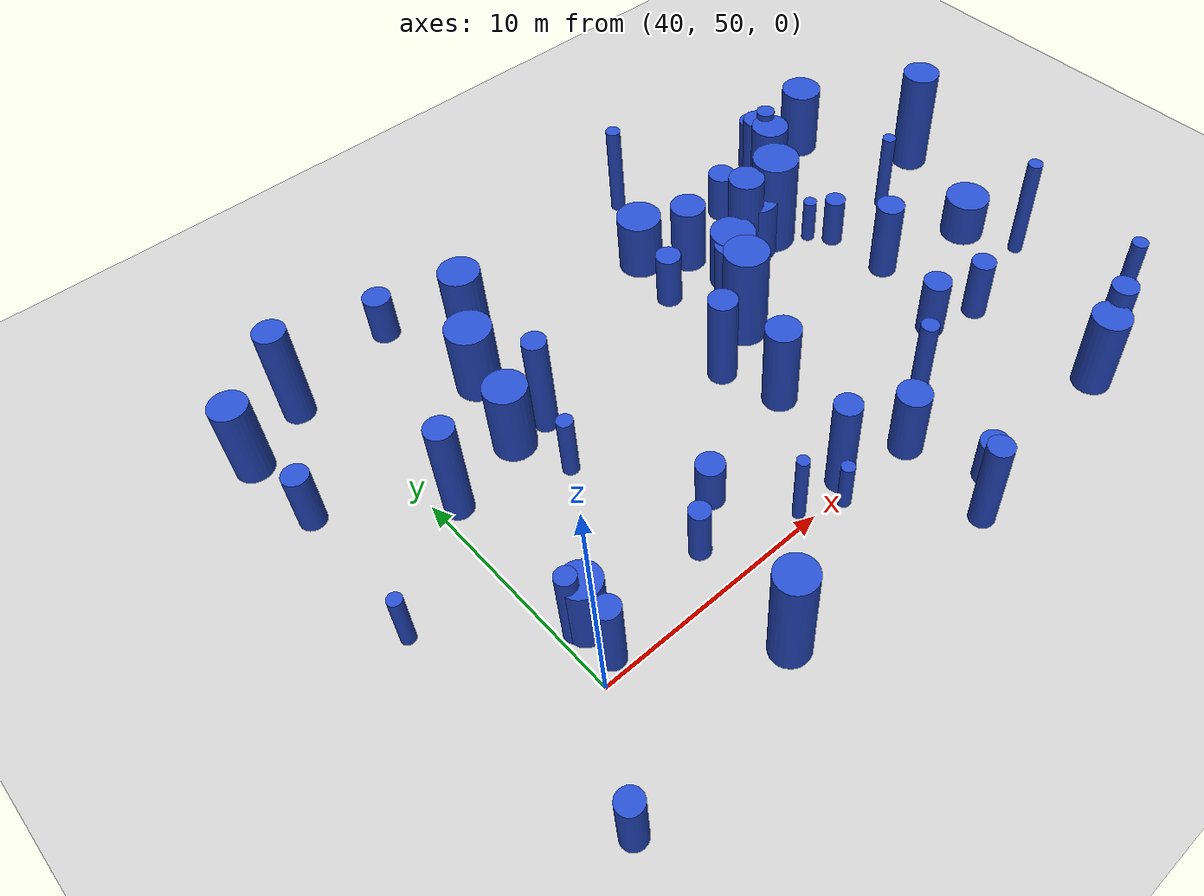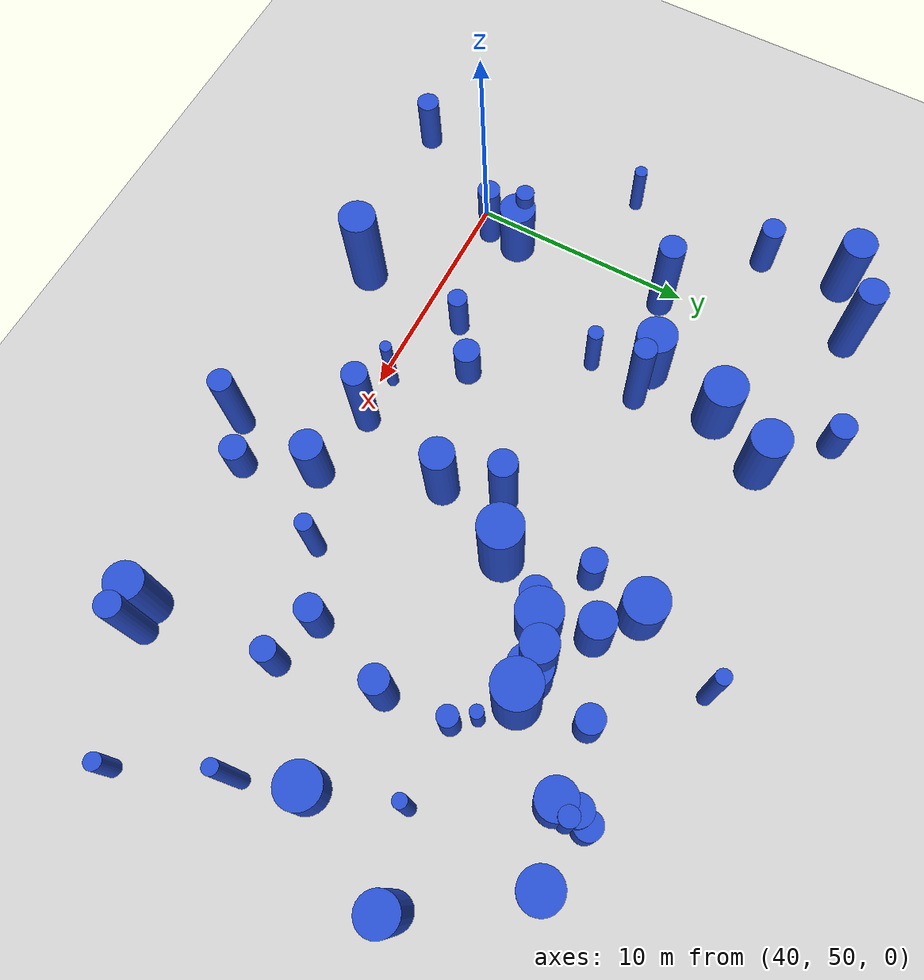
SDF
<sdf version="1.7">
 <world name="default">
  <model name="ground_plane">
   <static>1</static>
   <link name="link">
    <collision name="collision">
     <geometry><plane><normal>0 0 1</normal><size>100 100</size></plane></geometry>
     <surface>
      <contact><collide_bitmask>65535</collide_bitmask></contact>
      <friction><ode><mu>100</mu><mu2>50</mu2></ode></friction>
     </surface>
    </collision>
    <visual name="visual">
     <cast_shadows>0</cast_shadows>
     <geometry><plane><normal>0 0 1</normal><size>100 100</size></plane></geometry>
     <material>
      <script><uri>file://media/materials/scripts/gazebo.material</uri><name>Gazebo/Grey</name></script>
     </material>
    </visual>
   </link>
  </model>
  <model name="0">
   <static>0</static>
   <link name="link">
    <inertial>
     <mass>2</mass>
     <inertia><ixx>3.55486</ixx><ixy>0</ixy><ixz>0</ixz><iyy>3.55486</iyy><iyz>0</iyz><izz>0.297884</izz></inertia>
    </inertial>
    <collision name="collision">
     <geometry><cylinder><length>4.52056</length><radius>0.545787</radius></cylinder></geometry>
     <surface><contact><collide_without_contact>1</collide_without_contact></contact></surface>
    </collision>
    <visual name="visual">
     <geometry><cylinder><length>4.52056</length><radius>0.545787</radius></cylinder></geometry>
     <material>
      <script><uri>file://media/materials/scripts/gazebo.material</uri><name>Gazebo/Blue</name></script>
     </material>
    </visual>
    <gravity>0</gravity>
   </link>
   <pose>51.8596 50.4789 2.26028 0 -0 0</pose>
  </model>
  <model name="3">
   <static>0</static>
   <link name="link">
    <inertial>
     <mass>2</mass>
     <inertia><ixx>1.79748</ixx><ixy>0</ixy><ixz>0</ixz><iyy>1.79748</iyy><iyz>0</iyz><izz>0.403289</izz></inertia>
    </inertial>
    <collision name="collision">
     <geometry><cylinder><length>3.09435</length><radius>0.635051</radius></cylinder></geometry>
     <surface><contact><collide_without_contact>1</collide_without_contact></contact></surface>
    </collision>
    <visual name="visual">
     <geometry><cylinder><length>3.09435</length><radius>0.635051</radius></cylinder></geometry>
     <material>
      <script><uri>file://media/materials/scripts/gazebo.material</uri><name>Gazebo/Blue</name></script>
     </material>
    </visual>
    <gravity>0</gravity>
   </link>
   <pose>62.4576 65.7007 1.54718 0 -0 0</pose>
  </model>
  <model name="11">
   <static>0</static>
   <link name="link">
    <inertial>
     <mass>2</mass>
     <inertia><ixx>1.48597</ixx><ixy>0</ixy><ixz>0</ixz><iyy>1.48597</iyy><iyz>0</iyz><izz>0.264549</izz></inertia>
    </inertial>
    <collision name="collision">
     <geometry><cylinder><length>2.84994</length><radius>0.514344</radius></cylinder></geometry>
     <surface><contact><collide_without_contact>1</collide_without_contact></contact></surface>
    </collision>
    <visual name="visual">
     <geometry><cylinder><length>2.84994</length><radius>0.514344</radius></cylinder></geometry>
     <material>
      <script><uri>file://media/materials/scripts/gazebo.material</uri><name>Gazebo/Blue</name></script>
     </material>
    </visual>
    <gravity>0</gravity>
   </link>
   <pose>62.7124 52.6952 1.42497 0 -0 0</pose>
  </model>
  <model name="15">
   <static>0</static>
   <link name="link">
    <inertial>
     <mass>2</mass>
     <inertia><ixx>1.70661</ixx><ixy>0</ixy><ixz>0</ixz><iyy>1.70661</iyy><iyz>0</iyz><izz>0.956436</izz></inertia>
    </inertial>
    <collision name="collision">
     <geometry><cylinder><length>2.71484</length><radius>0.977976</radius></cylinder></geometry>
     <surface><contact><collide_without_contact>1</collide_without_contact></contact></surface>
    </collision>
    <visual name="visual">
     <geometry><cylinder><length>2.71484</length><radius>0.977976</radius></cylinder></geometry>
     <material>
      <script><uri>file://media/materials/scripts/gazebo.material</uri><name>Gazebo/Blue</name></script>
     </material>
    </visual>
    <gravity>0</gravity>
   </link>
   <pose>56.5828 61.1987 1.35742 0 -0 0</pose>
  </model>
  <model name="18">
   <static>0</static>
   <link name="link">
    <inertial>
     <mass>2</mass>
     <inertia><ixx>2.27941</ixx><ixy>0</ixy><ixz>0</ixz><iyy>2.27941</iyy><iyz>0</iyz><izz>0.900366</izz></inertia>
    </inertial>
    <collision name="collision">
     <geometry><cylinder><length>3.31291</length><radius>0.948876</radius></cylinder></geometry>
     <surface><contact><collide_without_contact>1</collide_without_contact></contact></surface>
    </collision>
    <visual name="visual">
     <geometry><cylinder><length>3.31291</length><radius>0.948876</radius></cylinder></geometry>
     <material>
      <script><uri>file://media/materials/scripts/gazebo.material</uri><name>Gazebo/Blue</name></script>
     </material>
    </visual>
    <gravity>0</gravity>
   </link>
   <pose>44.8857 63.7729 1.65646 0 -0 0</pose>
  </model>
  <model name="25">
   <static>0</static>
   <link name="link">
    <inertial>
     <mass>2</mass>
     <inertia><ixx>2.06566</ixx><ixy>0</ixy><ixz>0</ixz><iyy>2.06566</iyy><iyz>0</iyz><izz>0.169636</izz></inertia>
    </inertial>
    <collision name="collision">
     <geometry><cylinder><length>3.44747</length><radius>0.411869</radius></cylinder></geometry>
     <surface><contact><collide_without_contact>1</collide_without_contact></contact></surface>
    </collision>
    <visual name="visual">
     <geometry><cylinder><length>3.44747</length><radius>0.411869</radius></cylinder></geometry>
     <material>
      <script><uri>file://media/materials/scripts/gazebo.material</uri><name>Gazebo/Blue</name></script>
     </material>
    </visual>
    <gravity>0</gravity>
   </link>
   <pose>62.8115 65.5227 1.72374 0 -0 0</pose>
  </model>
  <model name="36">
   <static>0</static>
   <link name="link">
    <inertial>
     <mass>2</mass>
     <inertia><ixx>1.15813</ixx><ixy>0</ixy><ixz>0</ixz><iyy>1.15813</iyy><iyz>0</iyz><izz>0.18494</izz></inertia>
    </inertial>
    <collision name="collision">
     <geometry><cylinder><length>2.52863</length><radius>0.430047</radius></cylinder></geometry>
     <surface><contact><collide_without_contact>1</collide_without_contact></contact></surface>
    </collision>
    <visual name="visual">
     <geometry><cylinder><length>2.52863</length><radius>0.430047</radius></cylinder></geometry>
     <material>
      <script><uri>file://media/materials/scripts/gazebo.material</uri><name>Gazebo/Blue</name></script>
     </material>
    </visual>
    <gravity>0</gravity>
   </link>
   <pose>45.9389 51.8018 1.26432 0 -0 0</pose>
  </model>
  <model name="44">
   <static>0</static>
   <link name="link">
    <inertial>
     <mass>2</mass>
     <inertia><ixx>1.18069</ixx><ixy>0</ixy><ixz>0</ixz><iyy>1.18069</iyy><iyz>0</iyz><izz>0.295683</izz></inertia>
    </inertial>
    <collision name="collision">
     <geometry><cylinder><length>2.48939</length><radius>0.543768</radius></cylinder></geometry>
     <surface><contact><collide_without_contact>1</collide_without_contact></contact></surface>
    </collision>
    <visual name="visual">
     <geometry><cylinder><length>2.48939</length><radius>0.543768</radius></cylinder></geometry>
     <material>
      <script><uri>file://media/materials/scripts/gazebo.material</uri><name>Gazebo/Blue</name></script>
     </material>
    </visual>
    <gravity>0</gravity>
   </link>
   <pose>53.7726 62.1724 1.2447 0 -0 0</pose>
  </model>
  <model name="49">
   <static>0</static>
   <link name="link">
    <inertial>
     <mass>2</mass>
     <inertia><ixx>3.82017</ixx><ixy>0</ixy><ixz>0</ixz><iyy>3.82017</iyy><iyz>0</iyz><izz>0.891197</izz></inertia>
    </inertial>
    <collision name="collision">
     <geometry><cylinder><length>4.49972</length><radius>0.944032</radius></cylinder></geometry>
     <surface><contact><collide_without_contact>1</collide_without_contact></contact></surface>
    </collision>
    <visual name="visual">
     <geometry><cylinder><length>4.49972</length><radius>0.944032</radius></cylinder></geometry>
     <material>
      <script><uri>file://media/materials/scripts/gazebo.material</uri><name>Gazebo/Blue</name></script>
     </material>
    </visual>
    <gravity>0</gravity>
   </link>
   <pose>54.7934 58.5944 2.24986 0 -0 0</pose>
  </model>
  <model name="50">
   <static>0</static>
   <link name="link">
    <inertial>
     <mass>2</mass>
     <inertia><ixx>4.39079</ixx><ixy>0</ixy><ixz>0</ixz><iyy>4.39079</iyy><iyz>0</iyz><izz>0.652635</izz></inertia>
    </inertial>
    <collision name="collision">
     <geometry><cylinder><length>4.9383</length><radius>0.807858</radius></cylinder></geometry>
     <surface><contact><collide_without_contact>1</collide_without_contact></contact></surface>
    </collision>
    <visual name="visual">
     <geometry><cylinder><length>4.9383</length><radius>0.807858</radius></cylinder></geometry>
     <material>
      <script><uri>file://media/materials/scripts/gazebo.material</uri><name>Gazebo/Blue</name></script>
     </material>
    </visual>
    <gravity>0</gravity>
   </link>
   <pose>68.5236 61.303 2.46915 0 -0 0</pose>
  </model>
  <model name="71">
   <static>0</static>
   <link name="link">
    <inertial>
     <mass>2</mass>
     <inertia><ixx>1.26288</ixx><ixy>0</ixy><ixz>0</ixz><iyy>1.26288</iyy><iyz>0</iyz><izz>0.333359</izz></inertia>
    </inertial>
    <collision name="collision">
     <geometry><cylinder><length>2.5646</length><radius>0.577373</radius></cylinder></geometry>
     <surface><contact><collide_without_contact>1</collide_without_contact></contact></surface>
    </collision>
    <visual name="visual">
     <geometry><cylinder><length>2.5646</length><radius>0.577373</radius></cylinder></geometry>
     <material>
      <script><uri>file://media/materials/scripts/gazebo.material</uri><name>Gazebo/Blue</name></script>
     </material>
    </visual>
    <gravity>0</gravity>
   </link>
   <pose>62.7037 66.2773 1.2823 0 -0 0</pose>
  </model>
  <model name="73">
   <static>0</static>
   <link name="link">
    <inertial>
     <mass>2</mass>
     <inertia><ixx>2.00036</ixx><ixy>0</ixy><ixz>0</ixz><iyy>2.00036</iyy><iyz>0</iyz><izz>0.690071</izz></inertia>
    </inertial>
    <collision name="collision">
     <geometry><cylinder><length>3.1515</length><radius>0.830705</radius></cylinder></geometry>
     <surface><contact><collide_without_contact>1</collide_without_contact></contact></surface>
    </collision>
    <visual name="visual">
     <geometry><cylinder><length>3.1515</length><radius>0.830705</radius></cylinder></geometry>
     <material>
      <script><uri>file://media/materials/scripts/gazebo.material</uri><name>Gazebo/Blue</name></script>
     </material>
    </visual>
    <gravity>0</gravity>
   </link>
   <pose>62.4646 64.8746 1.57575 0 -0 0</pose>
  </model>
  <model name="75">
   <static>0</static>
   <link name="link">
    <inertial>
     <mass>2</mass>
     <inertia><ixx>1.82506</ixx><ixy>0</ixy><ixz>0</ixz><iyy>1.82506</iyy><iyz>0</iyz><izz>0.862483</izz></inertia>
    </inertial>
    <collision name="collision">
     <geometry><cylinder><length>2.89187</length><radius>0.928699</radius></cylinder></geometry>
     <surface><contact><collide_without_contact>1</collide_without_contact></contact></surface>
    </collision>
    <visual name="visual">
     <geometry><cylinder><length>2.89187</length><radius>0.928699</radius></cylinder></geometry>
     <material>
      <script><uri>file://media/materials/scripts/gazebo.material</uri><name>Gazebo/Blue</name></script>
     </material>
    </visual>
    <gravity>0</gravity>
   </link>
   <pose>58.6581 61.8679 1.44593 0 -0 0</pose>
  </model>
  <model name="91">
   <static>0</static>
   <link name="link">
    <inertial>
     <mass>2</mass>
     <inertia><ixx>1.36713</ixx><ixy>0</ixy><ixz>0</ixz><iyy>1.36713</iyy><iyz>0</iyz><izz>0.24454</izz></inertia>
    </inertial>
    <collision name="collision">
     <geometry><cylinder><length>2.73298</length><radius>0.49451</radius></cylinder></geometry>
     <surface><contact><collide_without_contact>1</collide_without_contact></contact></surface>
    </collision>
    <visual name="visual">
     <geometry><cylinder><length>2.73298</length><radius>0.49451</radius></cylinder></geometry>
     <material>
      <script><uri>file://media/materials/scripts/gazebo.material</uri><name>Gazebo/Blue</name></script>
     </material>
    </visual>
    <gravity>0</gravity>
   </link>
   <pose>37.4789 45.6424 1.36649 0 -0 0</pose>
  </model>
  <model name="93">
   <static>0</static>
   <link name="link">
    <inertial>
     <mass>2</mass>
     <inertia>
      <ixx>1.77363</ixx>
      <ixy>0</ixy>
      <ixz>0</ixz>
      <iyy>1.77363</iyy>
      <iyz>0</iyz>
      <izz>0.0645447</izz>
     </inertia>
    </inertial>
    <collision name="collision">
     <geometry><cylinder><length>3.23236</length><radius>0.254056</radius></cylinder></geometry>
     <surface><contact><collide_without_contact>1</collide_without_contact></contact></surface>
    </collision>
    <visual name="visual">
     <geometry><cylinder><length>3.23236</length><radius>0.254056</radius></cylinder></geometry>
     <material>
      <script><uri>file://media/materials/scripts/gazebo.material</uri><name>Gazebo/Blue</name></script>
     </material>
    </visual>
    <gravity>0</gravity>
   </link>
   <pose>49.6948 50.4954 1.61618 0 -0 0</pose>
  </model>
  <model name="94">
   <static>0</static>
   <link name="link">
    <inertial>
     <mass>2</mass>
     <inertia><ixx>1.43984</ixx><ixy>0</ixy><ixz>0</ixz><iyy>1.43984</iyy><iyz>0</iyz><izz>0.112897</izz></inertia>
    </inertial>
    <collision name="collision">
     <geometry><cylinder><length>2.88103</length><radius>0.336001</radius></cylinder></geometry>
     <surface><contact><collide_without_contact>1</collide_without_contact></contact></surface>
    </collision>
    <visual name="visual">
     <geometry><cylinder><length>2.88103</length><radius>0.336001</radius></cylinder></geometry>
     <material>
      <script><uri>file://media/materials/scripts/gazebo.material</uri><name>Gazebo/Blue</name></script>
     </material>
    </visual>
    <gravity>0</gravity>
   </link>
   <pose>44.8905 57.8981 1.44052 0 -0 0</pose>
  </model>
  <model name="95">
   <static>0</static>
   <link name="link">
    <inertial>
     <mass>2</mass>
     <inertia>
      <ixx>0.940801</ixx>
      <ixy>0</ixy>
      <ixz>0</ixz>
      <iyy>0.940801</iyy>
      <iyz>0</iyz>
      <izz>0.344368</izz>
     </inertia>
    </inertial>
    <collision name="collision">
     <geometry><cylinder><length>2.14749</length><radius>0.586829</radius></cylinder></geometry>
     <surface><contact><collide_without_contact>1</collide_without_contact></contact></surface>
    </collision>
    <visual name="visual">
     <geometry><cylinder><length>2.14749</length><radius>0.586829</radius></cylinder></geometry>
     <material>
      <script><uri>file://media/materials/scripts/gazebo.material</uri><name>Gazebo/Blue</name></script>
     </material>
    </visual>
    <gravity>0</gravity>
   </link>
   <pose>43.7118 68.782 1.07374 0 -0 0</pose>
  </model>
  <model name="118">
   <static>0</static>
   <link name="link">
    <inertial>
     <mass>2</mass>
     <inertia><ixx>1.89909</ixx><ixy>0</ixy><ixz>0</ixz><iyy>1.89909</iyy><iyz>0</iyz><izz>0.622758</izz></inertia>
    </inertial>
    <collision name="collision">
     <geometry><cylinder><length>3.08646</length><radius>0.78915</radius></cylinder></geometry>
     <surface><contact><collide_without_contact>1</collide_without_contact></contact></surface>
    </collision>
    <visual name="visual">
     <geometry><cylinder><length>3.08646</length><radius>0.78915</radius></cylinder></geometry>
     <material>
      <script><uri>file://media/materials/scripts/gazebo.material</uri><name>Gazebo/Blue</name></script>
     </material>
    </visual>
    <gravity>0</gravity>
   </link>
   <pose>41.0031 52.1707 1.54323 0 -0 0</pose>
  </model>
  <model name="133">
   <static>0</static>
   <link name="link">
    <inertial>
     <mass>2</mass>
     <inertia><ixx>2.01033</ixx><ixy>0</ixy><ixz>0</ixz><iyy>2.01033</iyy><iyz>0</iyz><izz>0.140787</izz></inertia>
    </inertial>
    <collision name="collision">
     <geometry><cylinder><length>3.41169</length><radius>0.375216</radius></cylinder></geometry>
     <surface><contact><collide_without_contact>1</collide_without_contact></contact></surface>
    </collision>
    <visual name="visual">
     <geometry><cylinder><length>3.41169</length><radius>0.375216</radius></cylinder></geometry>
     <material>
      <script><uri>file://media/materials/scripts/gazebo.material</uri><name>Gazebo/Blue</name></script>
     </material>
    </visual>
    <gravity>0</gravity>
   </link>
   <pose>57.8577 51.5941 1.70585 0 -0 0</pose>
  </model>
  <model name="145">
   <static>0</static>
   <link name="link">
    <inertial>
     <mass>2</mass>
     <inertia><ixx>2.22651</ixx><ixy>0</ixy><ixz>0</ixz><iyy>2.22651</iyy><iyz>0</iyz><izz>0.788437</izz></inertia>
    </inertial>
    <collision name="collision">
     <geometry><cylinder><length>3.31569</length><radius>0.88794</radius></cylinder></geometry>
     <surface><contact><collide_without_contact>1</collide_without_contact></contact></surface>
    </collision>
    <visual name="visual">
     <geometry><cylinder><length>3.31569</length><radius>0.88794</radius></cylinder></geometry>
     <material>
      <script><uri>file://media/materials/scripts/gazebo.material</uri><name>Gazebo/Blue</name></script>
     </material>
    </visual>
    <gravity>0</gravity>
   </link>
   <pose>65.402 65.7396 1.65784 0 -0 0</pose>
  </model>
  <model name="170">
   <static>0</static>
   <link name="link">
    <inertial>
     <mass>2</mass>
     <inertia>
      <ixx>0.902578</ixx>
      <ixy>0</ixy>
      <ixz>0</ixz>
      <iyy>0.902578</iyy>
      <iyz>0</iyz>
      <izz>0.329341</izz>
     </inertia>
    </inertial>
    <collision name="collision">
     <geometry><cylinder><length>2.10415</length><radius>0.573883</radius></cylinder></geometry>
     <surface><contact><collide_without_contact>1</collide_without_contact></contact></surface>
    </collision>
    <visual name="visual">
     <geometry><cylinder><length>2.10415</length><radius>0.573883</radius></cylinder></geometry>
     <material>
      <script><uri>file://media/materials/scripts/gazebo.material</uri><name>Gazebo/Blue</name></script>
     </material>
    </visual>
    <gravity>0</gravity>
   </link>
   <pose>47.8044 53.2513 1.05207 0 -0 0</pose>
  </model>
  <model name="178">
   <static>0</static>
   <link name="link">
    <inertial>
     <mass>2</mass>
     <inertia>
      <ixx>2.40858</ixx>
      <ixy>0</ixy>
      <ixz>0</ixz>
      <iyy>2.40858</iyy>
      <iyz>0</iyz>
      <izz>0.0861653</izz>
     </inertia>
    </inertial>
    <collision name="collision">
     <geometry><cylinder><length>3.76736</length><radius>0.293539</radius></cylinder></geometry>
     <surface><contact><collide_without_contact>1</collide_without_contact></contact></surface>
    </collision>
    <visual name="visual">
     <geometry><cylinder><length>3.76736</length><radius>0.293539</radius></cylinder></geometry>
     <material>
      <script><uri>file://media/materials/scripts/gazebo.material</uri><name>Gazebo/Blue</name></script>
     </material>
    </visual>
    <gravity>0</gravity>
   </link>
   <pose>65.0951 60.0598 1.88368 0 -0 0</pose>
  </model>
  <model name="191">
   <static>0</static>
   <link name="link">
    <inertial>
     <mass>2</mass>
     <inertia><ixx>2.5267</ixx><ixy>0</ixy><ixz>0</ixz><iyy>2.5267</iyy><iyz>0</iyz><izz>0.749953</izz></inertia>
    </inertial>
    <collision name="collision">
     <geometry><cylinder><length>3.5931</length><radius>0.865998</radius></cylinder></geometry>
     <surface><contact><collide_without_contact>1</collide_without_contact></contact></surface>
    </collision>
    <visual name="visual">
     <geometry><cylinder><length>3.5931</length><radius>0.865998</radius></cylinder></geometry>
     <material>
      <script><uri>file://media/materials/scripts/gazebo.material</uri><name>Gazebo/Blue</name></script>
     </material>
    </visual>
    <gravity>0</gravity>
   </link>
   <pose>46.3072 66.3061 1.79655 0 -0 0</pose>
  </model>
  <model name="199">
   <static>0</static>
   <link name="link">
    <inertial>
     <mass>2</mass>
     <inertia><ixx>2.64796</ixx><ixy>0</ixy><ixz>0</ixz><iyy>2.64796</iyy><iyz>0</iyz><izz>0.64376</izz></inertia>
    </inertial>
    <collision name="collision">
     <geometry><cylinder><length>3.73584</length><radius>0.802346</radius></cylinder></geometry>
     <surface><contact><collide_without_contact>1</collide_without_contact></contact></surface>
    </collision>
    <visual name="visual">
     <geometry><cylinder><length>3.73584</length><radius>0.802346</radius></cylinder></geometry>
     <material>
      <script><uri>file://media/materials/scripts/gazebo.material</uri><name>Gazebo/Blue</name></script>
     </material>
    </visual>
    <gravity>0</gravity>
   </link>
   <pose>63.0315 46.9354 1.86792 0 -0 0</pose>
  </model>
  <model name="203">
   <static>0</static>
   <link name="link">
    <inertial>
     <mass>2</mass>
     <inertia><ixx>3.10876</ixx><ixy>0</ixy><ixz>0</ixz><iyy>3.10876</iyy><iyz>0</iyz><izz>0.104013</izz></inertia>
    </inertial>
    <collision name="collision">
     <geometry><cylinder><length>4.28259</length><radius>0.322511</radius></cylinder></geometry>
     <surface><contact><collide_without_contact>1</collide_without_contact></contact></surface>
    </collision>
    <visual name="visual">
     <geometry><cylinder><length>4.28259</length><radius>0.322511</radius></cylinder></geometry>
     <material>
      <script><uri>file://media/materials/scripts/gazebo.material</uri><name>Gazebo/Blue</name></script>
     </material>
    </visual>
    <gravity>0</gravity>
   </link>
   <pose>56.0746 68.2998 2.14129 0 -0 0</pose>
  </model>
  <model name="213">
   <static>0</static>
   <link name="link">
    <inertial>
     <mass>2</mass>
     <inertia><ixx>3.45654</ixx><ixy>0</ixy><ixz>0</ixz><iyy>3.45654</iyy><iyz>0</iyz><izz>0.582944</izz></inertia>
    </inertial>
    <collision name="collision">
     <geometry><cylinder><length>4.3578</length><radius>0.763508</radius></cylinder></geometry>
     <surface><contact><collide_without_contact>1</collide_without_contact></contact></surface>
    </collision>
    <visual name="visual">
     <geometry><cylinder><length>4.3578</length><radius>0.763508</radius></cylinder></geometry>
     <material>
      <script><uri>file://media/materials/scripts/gazebo.material</uri><name>Gazebo/Blue</name></script>
     </material>
    </visual>
    <gravity>0</gravity>
   </link>
   <pose>58.0478 61.9204 2.1789 0 -0 0</pose>
  </model>
  <model name="219">
   <static>0</static>
   <link name="link">
    <inertial>
     <mass>2</mass>
     <inertia><ixx>3.40785</ixx><ixy>0</ixy><ixz>0</ixz><iyy>3.40785</iyy><iyz>0</iyz><izz>0.292131</izz></inertia>
    </inertial>
    <collision name="collision">
     <geometry><cylinder><length>4.42388</length><radius>0.540492</radius></cylinder></geometry>
     <surface><contact><collide_without_contact>1</collide_without_contact></contact></surface>
    </collision>
    <visual name="visual">
     <geometry><cylinder><length>4.42388</length><radius>0.540492</radius></cylinder></geometry>
     <material>
      <script><uri>file://media/materials/scripts/gazebo.material</uri><name>Gazebo/Blue</name></script>
     </material>
    </visual>
    <gravity>0</gravity>
   </link>
   <pose>64.0763 47.2549 2.21194 0 -0 0</pose>
  </model>
  <model name="230">
   <static>0</static>
   <link name="link">
    <inertial>
     <mass>2</mass>
     <inertia><ixx>2.95672</ixx><ixy>0</ixy><ixz>0</ixz><iyy>2.95672</iyy><iyz>0</iyz><izz>0.521312</izz></inertia>
    </inertial>
    <collision name="collision">
     <geometry><cylinder><length>4.02199</length><radius>0.722019</radius></cylinder></geometry>
     <surface><contact><collide_without_contact>1</collide_without_contact></contact></surface>
    </collision>
    <visual name="visual">
     <geometry><cylinder><length>4.02199</length><radius>0.722019</radius></cylinder></geometry>
     <material>
      <script><uri>file://media/materials/scripts/gazebo.material</uri><name>Gazebo/Blue</name></script>
     </material>
    </visual>
    <gravity>0</gravity>
   </link>
   <pose>53.1697 54.9299 2.01099 0 -0 0</pose>
  </model>
  <model name="238">
   <static>0</static>
   <link name="link">
    <inertial>
     <mass>2</mass>
     <inertia><ixx>3.85377</ixx><ixy>0</ixy><ixz>0</ixz><iyy>3.85377</iyy><iyz>0</iyz><izz>0.329647</izz></inertia>
    </inertial>
    <collision name="collision">
     <geometry><cylinder><length>4.70465</length><radius>0.574149</radius></cylinder></geometry>
     <surface><contact><collide_without_contact>1</collide_without_contact></contact></surface>
    </collision>
    <visual name="visual">
     <geometry><cylinder><length>4.70465</length><radius>0.574149</radius></cylinder></geometry>
     <material>
      <script><uri>file://media/materials/scripts/gazebo.material</uri><name>Gazebo/Blue</name></script>
     </material>
    </visual>
    <gravity>0</gravity>
   </link>
   <pose>40.7365 59.3109 2.35232 0 -0 0</pose>
  </model>
  <model name="247">
   <static>0</static>
   <link name="link">
    <inertial>
     <mass>2</mass>
     <inertia><ixx>2.30352</ixx><ixy>0</ixy><ixz>0</ixz><iyy>2.30352</iyy><iyz>0</iyz><izz>0.759355</izz></inertia>
    </inertial>
    <collision name="collision">
     <geometry><cylinder><length>3.3975</length><radius>0.87141</radius></cylinder></geometry>
     <surface><contact><collide_without_contact>1</collide_without_contact></contact></surface>
    </collision>
    <visual name="visual">
     <geometry><cylinder><length>3.3975</length><radius>0.87141</radius></cylinder></geometry>
     <material>
      <script><uri>file://media/materials/scripts/gazebo.material</uri><name>Gazebo/Blue</name></script>
     </material>
    </visual>
    <gravity>0</gravity>
   </link>
   <pose>44.0715 60.3091 1.69875 0 -0 0</pose>
  </model>
  <model name="262">
   <static>0</static>
   <link name="link">
    <inertial>
     <mass>2</mass>
     <inertia>
      <ixx>0.750308</ixx>
      <ixy>0</ixy>
      <ixz>0</ixz>
      <iyy>0.750308</iyy>
      <iyz>0</iyz>
      <izz>0.0839869</izz>
     </inertia>
    </inertial>
    <collision name="collision">
     <geometry><cylinder><length>2.06153</length><radius>0.289805</radius></cylinder></geometry>
     <surface><contact><collide_without_contact>1</collide_without_contact></contact></surface>
    </collision>
    <visual name="visual">
     <geometry><cylinder><length>2.06153</length><radius>0.289805</radius></cylinder></geometry>
     <material>
      <script><uri>file://media/materials/scripts/gazebo.material</uri><name>Gazebo/Blue</name></script>
     </material>
    </visual>
    <gravity>0</gravity>
   </link>
   <pose>60.9569 60.8095 1.03076 0 -0 0</pose>
  </model>
  <model name="266">
   <static>0</static>
   <link name="link">
    <inertial>
     <mass>2</mass>
     <inertia><ixx>2.35</ixx><ixy>0</ixy><ixz>0</ixz><iyy>2.35</iyy><iyz>0</iyz><izz>0.161342</izz></inertia>
    </inertial>
    <collision name="collision">
     <geometry><cylinder><length>3.68998</length><radius>0.401674</radius></cylinder></geometry>
     <surface><contact><collide_without_contact>1</collide_without_contact></contact></surface>
    </collision>
    <visual name="visual">
     <geometry><cylinder><length>3.68998</length><radius>0.401674</radius></cylinder></geometry>
     <material>
      <script><uri>file://media/materials/scripts/gazebo.material</uri><name>Gazebo/Blue</name></script>
     </material>
    </visual>
    <gravity>0</gravity>
   </link>
   <pose>40.5304 52.2904 1.84499 0 -0 0</pose>
  </model>
  <model name="270">
   <static>0</static>
   <link name="link">
    <inertial>
     <mass>2</mass>
     <inertia><ixx>3.86801</ixx><ixy>0</ixy><ixz>0</ixz><iyy>3.86801</iyy><iyz>0</iyz><izz>0.100642</izz></inertia>
    </inertial>
    <collision name="collision">
     <geometry><cylinder><length>4.78603</length><radius>0.317241</radius></cylinder></geometry>
     <surface><contact><collide_without_contact>1</collide_without_contact></contact></surface>
    </collision>
    <visual name="visual">
     <geometry><cylinder><length>4.78603</length><radius>0.317241</radius></cylinder></geometry>
     <material>
      <script><uri>file://media/materials/scripts/gazebo.material</uri><name>Gazebo/Blue</name></script>
     </material>
    </visual>
    <gravity>0</gravity>
   </link>
   <pose>67.1555 53.8833 2.39302 0 -0 0</pose>
  </model>
  <model name="274">
   <static>0</static>
   <link name="link">
    <inertial>
     <mass>2</mass>
     <inertia><ixx>2.51652</ixx><ixy>0</ixy><ixz>0</ixz><iyy>2.51652</iyy><iyz>0</iyz><izz>0.572204</izz></inertia>
    </inertial>
    <collision name="collision">
     <geometry><cylinder><length>3.65821</length><radius>0.756441</radius></cylinder></geometry>
     <surface><contact><collide_without_contact>1</collide_without_contact></contact></surface>
    </collision>
    <visual name="visual">
     <geometry><cylinder><length>3.65821</length><radius>0.756441</radius></cylinder></geometry>
     <material>
      <script><uri>file://media/materials/scripts/gazebo.material</uri><name>Gazebo/Blue</name></script>
     </material>
    </visual>
    <gravity>0</gravity>
   </link>
   <pose>36.1654 66.1938 1.82911 0 -0 0</pose>
  </model>
  <model name="283">
   <static>0</static>
   <link name="link">
    <inertial>
     <mass>2</mass>
     <inertia><ixx>2.38263</ixx><ixy>0</ixy><ixz>0</ixz><iyy>2.38263</iyy><iyz>0</iyz><izz>0.355141</izz></inertia>
    </inertial>
    <collision name="collision">
     <geometry><cylinder><length>3.63735</length><radius>0.595937</radius></cylinder></geometry>
     <surface><contact><collide_without_contact>1</collide_without_contact></contact></surface>
    </collision>
    <visual name="visual">
     <geometry><cylinder><length>3.63735</length><radius>0.595937</radius></cylinder></geometry>
     <material>
      <script><uri>file://media/materials/scripts/gazebo.material</uri><name>Gazebo/Blue</name></script>
     </material>
    </visual>
    <gravity>0</gravity>
   </link>
   <pose>61.8561 57.1143 1.81868 0 -0 0</pose>
  </model>
  <model name="285">
   <static>0</static>
   <link name="link">
    <inertial>
     <mass>2</mass>
     <inertia><ixx>1.3879</ixx><ixy>0</ixy><ixz>0</ixz><iyy>1.3879</iyy><iyz>0</iyz><izz>0.270528</izz></inertia>
    </inertial>
    <collision name="collision">
     <geometry><cylinder><length>2.7415</length><radius>0.520123</radius></cylinder></geometry>
     <surface><contact><collide_without_contact>1</collide_without_contact></contact></surface>
    </collision>
    <visual name="visual">
     <geometry><cylinder><length>2.7415</length><radius>0.520123</radius></cylinder></geometry>
     <material>
      <script><uri>file://media/materials/scripts/gazebo.material</uri><name>Gazebo/Blue</name></script>
     </material>
    </visual>
    <gravity>0</gravity>
   </link>
   <pose>36.5092 62.5655 1.37075 0 -0 0</pose>
  </model>
  <model name="295">
   <static>0</static>
   <link name="link">
    <inertial>
     <mass>2</mass>
     <inertia><ixx>1.40702</ixx><ixy>0</ixy><ixz>0</ixz><iyy>1.40702</iyy><iyz>0</iyz><izz>0.430739</izz></inertia>
    </inertial>
    <collision name="collision">
     <geometry><cylinder><length>2.67393</length><radius>0.656307</radius></cylinder></geometry>
     <surface><contact><collide_without_contact>1</collide_without_contact></contact></surface>
    </collision>
    <visual name="visual">
     <geometry><cylinder><length>2.67393</length><radius>0.656307</radius></cylinder></geometry>
     <material>
      <script><uri>file://media/materials/scripts/gazebo.material</uri><name>Gazebo/Blue</name></script>
     </material>
    </visual>
    <gravity>0</gravity>
   </link>
   <pose>55.9702 60.735 1.33696 0 -0 0</pose>
  </model>
  <model name="297">
   <static>0</static>
   <link name="link">
    <inertial>
     <mass>2</mass>
     <inertia><ixx>1.04304</ixx><ixy>0</ixy><ixz>0</ixz><iyy>1.04304</iyy><iyz>0</iyz><izz>0.357104</izz></inertia>
    </inertial>
    <collision name="collision">
     <geometry><cylinder><length>2.27748</length><radius>0.597582</radius></cylinder></geometry>
     <surface><contact><collide_without_contact>1</collide_without_contact></contact></surface>
    </collision>
    <visual name="visual">
     <geometry><cylinder><length>2.27748</length><radius>0.597582</radius></cylinder></geometry>
     <material>
      <script><uri>file://media/materials/scripts/gazebo.material</uri><name>Gazebo/Blue</name></script>
     </material>
    </visual>
    <gravity>0</gravity>
   </link>
   <pose>59.2653 64.7119 1.13874 0 -0 0</pose>
  </model>
  <model name="300">
   <static>0</static>
   <link name="link">
    <inertial>
     <mass>2</mass>
     <inertia><ixx>3.77175</ixx><ixy>0</ixy><ixz>0</ixz><iyy>3.77175</iyy><iyz>0</iyz><izz>0.40467</izz></inertia>
    </inertial>
    <collision name="collision">
     <geometry><cylinder><length>4.6278</length><radius>0.636137</radius></cylinder></geometry>
     <surface><contact><collide_without_contact>1</collide_without_contact></contact></surface>
    </collision>
    <visual name="visual">
     <geometry><cylinder><length>4.6278</length><radius>0.636137</radius></cylinder></geometry>
     <material>
      <script><uri>file://media/materials/scripts/gazebo.material</uri><name>Gazebo/Blue</name></script>
     </material>
    </visual>
    <gravity>0</gravity>
   </link>
   <pose>38.8384 67.4636 2.3139 0 -0 0</pose>
  </model>
  <model name="324">
   <static>0</static>
   <link name="link">
    <inertial>
     <mass>2</mass>
     <inertia>
      <ixx>0.905673</ixx>
      <ixy>0</ixy>
      <ixz>0</ixz>
      <iyy>0.905673</iyy>
      <iyz>0</iyz>
      <izz>0.127247</izz>
     </inertia>
    </inertial>
    <collision name="collision">
     <geometry><cylinder><length>2.24773</length><radius>0.356717</radius></cylinder></geometry>
     <surface><contact><collide_without_contact>1</collide_without_contact></contact></surface>
    </collision>
    <visual name="visual">
     <geometry><cylinder><length>2.24773</length><radius>0.356717</radius></cylinder></geometry>
     <material>
      <script><uri>file://media/materials/scripts/gazebo.material</uri><name>Gazebo/Blue</name></script>
     </material>
    </visual>
    <gravity>0</gravity>
   </link>
   <pose>69.0587 49.2167 1.12387 0 -0 0</pose>
  </model>
  <model name="328">
   <static>0</static>
   <link name="link">
    <inertial>
     <mass>2</mass>
     <inertia><ixx>3.12982</ixx><ixy>0</ixy><ixz>0</ixz><iyy>3.12982</iyy><iyz>0</iyz><izz>0.26232</izz></inertia>
    </inertial>
    <collision name="collision">
     <geometry><cylinder><length>4.24169</length><radius>0.512172</radius></cylinder></geometry>
     <surface><contact><collide_without_contact>1</collide_without_contact></contact></surface>
    </collision>
    <visual name="visual">
     <geometry><cylinder><length>4.24169</length><radius>0.512172</radius></cylinder></geometry>
     <material>
      <script><uri>file://media/materials/scripts/gazebo.material</uri><name>Gazebo/Blue</name></script>
     </material>
    </visual>
    <gravity>0</gravity>
   </link>
   <pose>54.4853 45.7609 2.12085 0 -0 0</pose>
  </model>
  <model name="333">
   <static>0</static>
   <link name="link">
    <inertial>
     <mass>2</mass>
     <inertia>
      <ixx>0.994056</ixx>
      <ixy>0</ixy>
      <ixz>0</ixz>
      <iyy>0.994056</iyy>
      <iyz>0</iyz>
      <izz>0.195811</izz>
     </inertia>
    </inertial>
    <collision name="collision">
     <geometry><cylinder><length>2.31882</length><radius>0.442505</radius></cylinder></geometry>
     <surface><contact><collide_without_contact>1</collide_without_contact></contact></surface>
    </collision>
    <visual name="visual">
     <geometry><cylinder><length>2.31882</length><radius>0.442505</radius></cylinder></geometry>
     <material>
      <script><uri>file://media/materials/scripts/gazebo.material</uri><name>Gazebo/Blue</name></script>
     </material>
    </visual>
    <gravity>0</gravity>
   </link>
   <pose>61.6342 59.9513 1.15941 0 -0 0</pose>
  </model>
  <model name="349">
   <static>0</static>
   <link name="link">
    <inertial>
     <mass>2</mass>
     <inertia>
      <ixx>0.820107</ixx>
      <ixy>0</ixy>
      <ixz>0</ixz>
      <iyy>0.820107</iyy>
      <iyz>0</iyz>
      <izz>0.0760271</izz>
     </inertia>
    </inertial>
    <collision name="collision">
     <geometry><cylinder><length>2.16623</length><radius>0.27573</radius></cylinder></geometry>
     <surface><contact><collide_without_contact>1</collide_without_contact></contact></surface>
    </collision>
    <visual name="visual">
     <geometry><cylinder><length>2.16623</length><radius>0.27573</radius></cylinder></geometry>
     <material>
      <script><uri>file://media/materials/scripts/gazebo.material</uri><name>Gazebo/Blue</name></script>
     </material>
    </visual>
    <gravity>0</gravity>
   </link>
   <pose>51.308 49.7193 1.08312 0 -0 0</pose>
  </model>
  <model name="356">
   <static>0</static>
   <link name="link">
    <inertial>
     <mass>2</mass>
     <inertia><ixx>3.19049</ixx><ixy>0</ixy><ixz>0</ixz><iyy>3.19049</iyy><iyz>0</iyz><izz>0.366687</izz></inertia>
    </inertial>
    <collision name="collision">
     <geometry><cylinder><length>4.24769</length><radius>0.605547</radius></cylinder></geometry>
     <surface><contact><collide_without_contact>1</collide_without_contact></contact></surface>
    </collision>
    <visual name="visual">
     <geometry><cylinder><length>4.24769</length><radius>0.605547</radius></cylinder></geometry>
     <material>
      <script><uri>file://media/materials/scripts/gazebo.material</uri><name>Gazebo/Blue</name></script>
     </material>
    </visual>
    <gravity>0</gravity>
   </link>
   <pose>52.4177 57.4528 2.12385 0 -0 0</pose>
  </model>
  <model name="379">
   <static>0</static>
   <link name="link">
    <inertial>
     <mass>2</mass>
     <inertia><ixx>1.98213</ixx><ixy>0</ixy><ixz>0</ixz><iyy>1.98213</iyy><iyz>0</iyz><izz>0.245871</izz></inertia>
    </inertial>
    <collision name="collision">
     <geometry><cylinder><length>3.33993</length><radius>0.495854</radius></cylinder></geometry>
     <surface><contact><collide_without_contact>1</collide_without_contact></contact></surface>
    </collision>
    <visual name="visual">
     <geometry><cylinder><length>3.33993</length><radius>0.495854</radius></cylinder></geometry>
     <material>
      <script><uri>file://media/materials/scripts/gazebo.material</uri><name>Gazebo/Blue</name></script>
     </material>
    </visual>
    <gravity>0</gravity>
   </link>
   <pose>40.8966 50.6812 1.66997 0 -0 0</pose>
  </model>
  <model name="384">
   <static>0</static>
   <link name="link">
    <inertial>
     <mass>2</mass>
     <inertia><ixx>1.67955</ixx><ixy>0</ixy><ixz>0</ixz><iyy>1.67955</iyy><iyz>0</iyz><izz>0.918766</izz></inertia>
    </inertial>
    <collision name="collision">
     <geometry><cylinder><length>2.70574</length><radius>0.958523</radius></cylinder></geometry>
     <surface><contact><collide_without_contact>1</collide_without_contact></contact></surface>
    </collision>
    <visual name="visual">
     <geometry><cylinder><length>2.70574</length><radius>0.958523</radius></cylinder></geometry>
     <material>
      <script><uri>file://media/materials/scripts/gazebo.material</uri><name>Gazebo/Blue</name></script>
     </material>
    </visual>
    <gravity>0</gravity>
   </link>
   <pose>54.3305 64.6753 1.35287 0 -0 0</pose>
  </model>
  <model name="386">
   <static>0</static>
   <link name="link">
    <inertial>
     <mass>2</mass>
     <inertia>
      <ixx>1.11368</ixx>
      <ixy>0</ixy>
      <ixz>0</ixz>
      <iyy>1.11368</iyy>
      <iyz>0</iyz>
      <izz>0.0821507</izz>
     </inertia>
    </inertial>
    <collision name="collision">
     <geometry><cylinder><length>2.53686</length><radius>0.286619</radius></cylinder></geometry>
     <surface><contact><collide_without_contact>1</collide_without_contact></contact></surface>
    </collision>
    <visual name="visual">
     <geometry><cylinder><length>2.53686</length><radius>0.286619</radius></cylinder></geometry>
     <material>
      <script><uri>file://media/materials/scripts/gazebo.material</uri><name>Gazebo/Blue</name></script>
     </material>
    </visual>
    <gravity>0</gravity>
   </link>
   <pose>36.3037 56.0504 1.26843 0 -0 0</pose>
  </model>
  <model name="388">
   <static>0</static>
   <link name="link">
    <inertial>
     <mass>2</mass>
     <inertia><ixx>3.84588</ixx><ixy>0</ixy><ixz>0</ixz><iyy>3.84588</iyy><iyz>0</iyz><izz>0.238577</izz></inertia>
    </inertial>
    <collision name="collision">
     <geometry><cylinder><length>4.72859</length><radius>0.488443</radius></cylinder></geometry>
     <surface><contact><collide_without_contact>1</collide_without_contact></contact></surface>
    </collision>
    <visual name="visual">
     <geometry><cylinder><length>4.72859</length><radius>0.488443</radius></cylinder></geometry>
     <material>
      <script><uri>file://media/materials/scripts/gazebo.material</uri><name>Gazebo/Blue</name></script>
     </material>
    </visual>
    <gravity>0</gravity>
   </link>
   <pose>45.6012 60.3086 2.36429 0 -0 0</pose>
  </model>
  <model name="401">
   <static>0</static>
   <link name="link">
    <inertial>
     <mass>2</mass>
     <inertia><ixx>1.93667</ixx><ixy>0</ixy><ixz>0</ixz><iyy>1.93667</iyy><iyz>0</iyz><izz>0.575722</izz></inertia>
    </inertial>
    <collision name="collision">
     <geometry><cylinder><length>3.14529</length><radius>0.758764</radius></cylinder></geometry>
     <surface><contact><collide_without_contact>1</collide_without_contact></contact></surface>
    </collision>
    <visual name="visual">
     <geometry><cylinder><length>3.14529</length><radius>0.758764</radius></cylinder></geometry>
     <material>
      <script><uri>file://media/materials/scripts/gazebo.material</uri><name>Gazebo/Blue</name></script>
     </material>
    </visual>
    <gravity>0</gravity>
   </link>
   <pose>56.0034 63.3728 1.57264 0 -0 0</pose>
  </model>
  <model name="422">
   <static>0</static>
   <link name="link">
    <inertial>
     <mass>2</mass>
     <inertia>
      <ixx>0.866079</ixx>
      <ixy>0</ixy>
      <ixz>0</ixz>
      <iyy>0.866079</iyy>
      <iyz>0</iyz>
      <izz>0.342625</izz>
     </inertia>
    </inertial>
    <collision name="collision">
     <geometry><cylinder><length>2.04171</length><radius>0.585342</radius></cylinder></geometry>
     <surface><contact><collide_without_contact>1</collide_without_contact></contact></surface>
    </collision>
    <visual name="visual">
     <geometry><cylinder><length>2.04171</length><radius>0.585342</radius></cylinder></geometry>
     <material>
      <script><uri>file://media/materials/scripts/gazebo.material</uri><name>Gazebo/Blue</name></script>
     </material>
    </visual>
    <gravity>0</gravity>
   </link>
   <pose>56.1517 46.836 1.02086 0 -0 0</pose>
  </model>
  <model name="432">
   <static>0</static>
   <link name="link">
    <inertial>
     <mass>2</mass>
     <inertia><ixx>3.90649</ixx><ixy>0</ixy><ixz>0</ixz><iyy>3.90649</iyy><iyz>0</iyz><izz>0.993442</izz></inertia>
    </inertial>
    <collision name="collision">
     <geometry><cylinder><length>4.52312</length><radius>0.996715</radius></cylinder></geometry>
     <surface><contact><collide_without_contact>1</collide_without_contact></contact></surface>
    </collision>
    <visual name="visual">
     <geometry><cylinder><length>4.52312</length><radius>0.996715</radius></cylinder></geometry>
     <material>
      <script><uri>file://media/materials/scripts/gazebo.material</uri><name>Gazebo/Blue</name></script>
     </material>
    </visual>
    <gravity>0</gravity>
   </link>
   <pose>59.7428 61.8717 2.26156 0 -0 0</pose>
  </model>
  <model name="439">
   <static>0</static>
   <link name="link">
    <inertial>
     <mass>2</mass>
     <inertia><ixx>3.94078</ixx><ixy>0</ixy><ixz>0</ixz><iyy>3.94078</iyy><iyz>0</iyz><izz>0.642371</izz></inertia>
    </inertial>
    <collision name="collision">
     <geometry><cylinder><length>4.66021</length><radius>0.80148</radius></cylinder></geometry>
     <surface><contact><collide_without_contact>1</collide_without_contact></contact></surface>
    </collision>
    <visual name="visual">
     <geometry><cylinder><length>4.66021</length><radius>0.80148</radius></cylinder></geometry>
     <material>
      <script><uri>file://media/materials/scripts/gazebo.material</uri><name>Gazebo/Blue</name></script>
     </material>
    </visual>
    <gravity>0</gravity>
   </link>
   <pose>45.4999 46.8612 2.3301 0 -0 0</pose>
  </model>
  <model name="463">
   <static>0</static>
   <link name="link">
    <inertial>
     <mass>2</mass>
     <inertia><ixx>1.89577</ixx><ixy>0</ixy><ixz>0</ixz><iyy>1.89577</iyy><iyz>0</iyz><izz>0.479569</izz></inertia>
    </inertial>
    <collision name="collision">
     <geometry><cylinder><length>3.15212</length><radius>0.692509</radius></cylinder></geometry>
     <surface><contact><collide_without_contact>1</collide_without_contact></contact></surface>
    </collision>
    <visual name="visual">
     <geometry><cylinder><length>3.15212</length><radius>0.692509</radius></cylinder></geometry>
     <material>
      <script><uri>file://media/materials/scripts/gazebo.material</uri><name>Gazebo/Blue</name></script>
     </material>
    </visual>
    <gravity>0</gravity>
   </link>
   <pose>54.9755 49.8737 1.57606 0 -0 0</pose>
  </model>
  <model name="465">
   <static>0</static>
   <link name="link">
    <inertial>
     <mass>2</mass>
     <inertia><ixx>1.15384</ixx><ixy>0</ixy><ixz>0</ixz><iyy>1.15384</iyy><iyz>0</iyz><izz>0.911851</izz></inertia>
    </inertial>
    <collision name="collision">
     <geometry><cylinder><length>2.04633</length><radius>0.954909</radius></cylinder></geometry>
     <surface><contact><collide_without_contact>1</collide_without_contact></contact></surface>
    </collision>
    <visual name="visual">
     <geometry><cylinder><length>2.04633</length><radius>0.954909</radius></cylinder></geometry>
     <material>
      <script><uri>file://media/materials/scripts/gazebo.material</uri><name>Gazebo/Blue</name></script>
     </material>
    </visual>
    <gravity>0</gravity>
   </link>
   <pose>66.3187 56.2771 1.02317 0 -0 0</pose>
  </model>
  <model name="496">
   <static>0</static>
   <link name="link">
    <inertial>
     <mass>2</mass>
     <inertia><ixx>1.40087</ixx><ixy>0</ixy><ixz>0</ixz><iyy>1.40087</iyy><iyz>0</iyz><izz>0.345259</izz></inertia>
    </inertial>
    <collision name="collision">
     <geometry><cylinder><length>2.71467</length><radius>0.587587</radius></cylinder></geometry>
     <surface><contact><collide_without_contact>1</collide_without_contact></contact></surface>
    </collision>
    <visual name="visual">
     <geometry><cylinder><length>2.71467</length><radius>0.587587</radius></cylinder></geometry>
     <material>
      <script><uri>file://media/materials/scripts/gazebo.material</uri><name>Gazebo/Blue</name></script>
     </material>
    </visual>
    <gravity>0</gravity>
   </link>
   <pose>60.5612 53.3315 1.35734 0 -0 0</pose>
  </model>
 </world>
</sdf>
